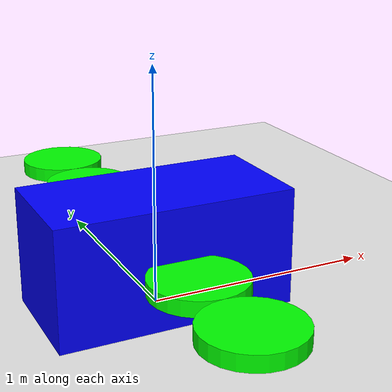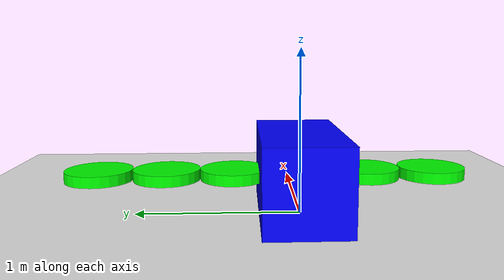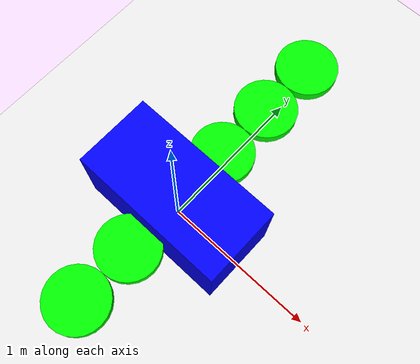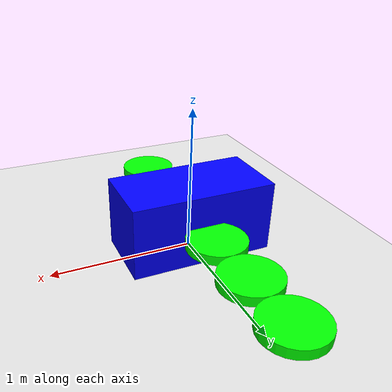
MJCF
<mujoco><worldbody><light diffuse=".5 .5 .5" pos="0 0 3" dir="0 0 -1" /><geom name="ground" type="plane" size="5 5 0.1" rgba=".9 .9 .9 1" /><body name="body"><freejoint name="root" /><geom name="torso" type="box" size="0.5 0.25 0.25" pos="0 0 0.25" rgba="0 0 1 1" mass="0.1" /><body name="wing0" pos="0 0.4 0.25" euler="0 0 90"><joint name="wing0link" type="hinge" axis="0 0 1" range="-1 1" /><geom name="wing0" type="cylinder" size="0.2 0.0325" pos="0 0 0" rgba="0 1 0 1" mass="1" /><body name="wing1" euler="0 0 0"><body name="wing2" euler="0 0 0" /><joint name="wing2link" type="hinge" pos="0 0 0" axis="1 0 0" range="-45 45" /><geom name="wing2" type="cylinder" size="0.2 0.0325" pos="0.8 0 0" rgba="0 1 0 1" mass="1.5" /></body><joint name="wing1link" type="hinge" pos="0 0 0" axis="1 0 0" range="-93 93" /><geom name="wing1" type="cylinder" size="0.2 0.0325" pos="0.4 0 0" rgba="0 1 0 1" mass="1.5" /></body><body name="wingl0" pos="0 -0.4 0.25" euler="0 0 90"><joint name="wingl0link" type="hinge" axis="0 0 1" range="-1 1" /><geom name="wingl0" type="cylinder" size="0.2 0.0325" pos="0 0 0" rgba="0 1 0 1" mass="1" /><body name="wingl1" euler="0 0 0" /><joint name="wingl1link" type="hinge" pos="0 0 0" axis="1 0 0" range="-14 14" /><geom name="wingl1" type="cylinder" size="0.2 0.0325" pos="-0.4 0 0" rgba="0 1 0 1" mass="1.5" /></body></body></worldbody><actuator><motor name="wing0" joint="wing0link" gear="6" /><motor name="wing1" joint="wing1link" gear="93" /><motor name="wing2" joint="wing2link" gear="43" /><motor name="wingl0" joint="wingl0link" gear="58" /><motor name="wingl1" joint="wingl1link" gear="57" /></actuator></mujoco>
